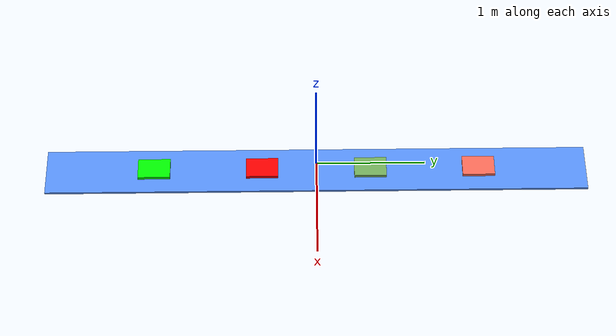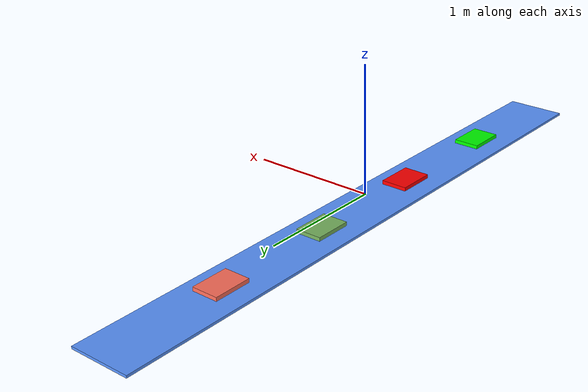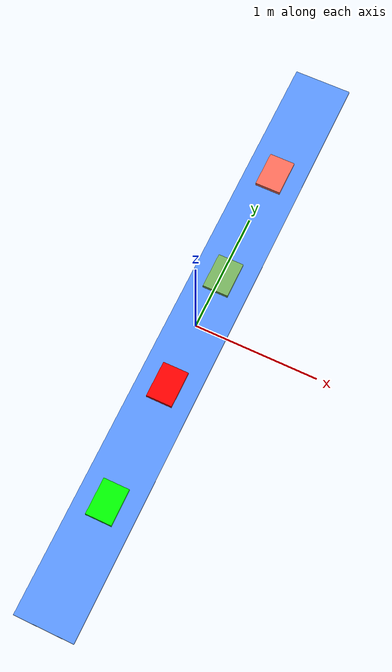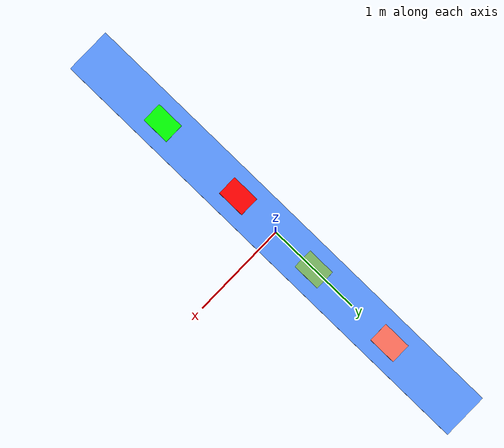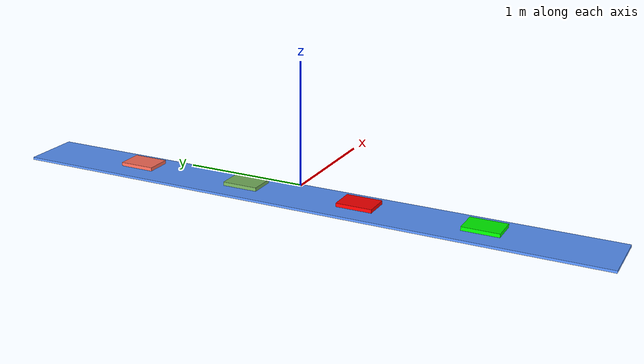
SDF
<sdf version="1.4">
 <world name="default">
  <light name="sun" type="directional">
   <pose>0 0 10 0 -0 0</pose>
   <diffuse>0.8 0.8 0.8 1</diffuse>
   <specular>0.2 0.2 0.2 1</specular>
   <attenuation>
    <range>1000</range>
    <constant>0.9</constant>
    <linear>0.01</linear>
    <quadratic>0.001</quadratic>
   </attenuation>
   <direction>-0.5 0.1 -0.9</direction>
  </light>
  <model name="ground_plane">
   <static>1</static>
   <link name="link">
    <collision name="collision">
     <geometry><plane><normal>0 0 1</normal><size>100 100</size></plane></geometry>
     <surface><friction><ode><mu>100</mu><mu2>50</mu2></ode></friction></surface>
    </collision>
    <visual name="visual">
     <cast_shadows>0</cast_shadows>
     <geometry><plane><normal>0 0 1</normal><size>100 100</size></plane></geometry>
     <material>
      <script><uri>file://media/materials/scripts/gazebo.material</uri><name>Gazebo/Grey</name></script>
     </material>
    </visual>
    <velocity_decay><linear>0</linear><angular>0</angular></velocity_decay>
   </link>
  </model>
  <model name="pista_com_sensores_1">
   <link name="link_0">
    <pose>-0 0 -0.104 -0 -0 -0</pose>
    <inertial>
     <mass>1</mass>
     <inertia>
      <ixx>0.166667</ixx>
      <ixy>0</ixy>
      <ixz>0</ixz>
      <iyy>0.166667</iyy>
      <iyz>0</iyz>
      <izz>0.166667</izz>
     </inertia>
    </inertial>
    <visual name="visual">
     <geometry><box><size>0.48 5 0.02</size></box></geometry>
     <material>
      <lighting>1</lighting>
      <script><uri>file://media/materials/scripts/gazebo.material</uri><name>Gazebo/Grey</name></script>
      <ambient>0.353 0.588 1 1</ambient>
      <diffuse>0.353 0.588 1 1</diffuse>
      <specular>0 0 1 1</specular>
      <emissive>0 0 0 1</emissive>
      <shader type="vertex"><normal_map>__default__</normal_map></shader>
     </material>
    </visual>
    <collision name="collision">
     <geometry><box><size>0.48 5 0.02</size></box></geometry>
     <surface>
      <friction>
       <ode><mu>1</mu><mu2>1</mu2><fdir1>0 0 0</fdir1><slip1>0</slip1><slip2>0</slip2></ode>
       <torsional>
        <coefficient>1</coefficient>
        <patch_radius>0</patch_radius>
        <surface_radius>0</surface_radius>
        <use_patch_radius>1</use_patch_radius>
        <ode><slip>0</slip></ode>
       </torsional>
      </friction>
      <bounce><restitution_coefficient>0</restitution_coefficient><threshold>1e+06</threshold></bounce>
      <contact>
       <collide_without_contact>0</collide_without_contact>
       <collide_without_contact_bitmask>1</collide_without_contact_bitmask>
       <collide_bitmask>1</collide_bitmask>
       <ode>
        <soft_cfm>0</soft_cfm>
        <soft_erp>0.2</soft_erp>
        <kp>1e+13</kp>
        <kd>1</kd>
        <max_vel>0.01</max_vel>
        <min_depth>0</min_depth>
       </ode>
       <bullet>
        <split_impulse>1</split_impulse>
        <split_impulse_penetration_threshold>-0.01</split_impulse_penetration_threshold>
        <soft_cfm>0</soft_cfm>
        <soft_erp>0.2</soft_erp>
        <kp>1e+13</kp>
        <kd>1</kd>
       </bullet>
      </contact>
     </surface>
    </collision>
   </link>
   <link name="link_1_clone">
    <pose>-0 -0.5 -0.064 -0 -0 -0</pose>
    <inertial>
     <mass>1</mass>
     <inertia>
      <ixx>0.166667</ixx>
      <ixy>0</ixy>
      <ixz>0</ixz>
      <iyy>0.166667</iyy>
      <iyz>0</iyz>
      <izz>0.166667</izz>
     </inertia>
    </inertial>
    <visual name="visual">
     <geometry><box><size>0.21 0.297 0.03</size></box></geometry>
     <material>
      <lighting>1</lighting>
      <script><uri>file://media/materials/scripts/gazebo.material</uri><name>Gazebo/Grey</name></script>
      <ambient>1 0 0 1</ambient>
      <diffuse>1 0 0 1</diffuse>
      <specular>1 0 0 1</specular>
      <emissive>1 0 0 1</emissive>
      <shader type="vertex"><normal_map>__default__</normal_map></shader>
     </material>
    </visual>
    <collision name="collision">
     <geometry><box><size>0.21 0.297 0.03</size></box></geometry>
     <surface>
      <friction>
       <ode><mu>1</mu><mu2>1</mu2><fdir1>0 0 0</fdir1><slip1>0</slip1><slip2>0</slip2></ode>
       <torsional>
        <coefficient>1</coefficient>
        <patch_radius>0</patch_radius>
        <surface_radius>0</surface_radius>
        <use_patch_radius>1</use_patch_radius>
        <ode><slip>0</slip></ode>
       </torsional>
      </friction>
      <bounce><restitution_coefficient>0</restitution_coefficient><threshold>1e+06</threshold></bounce>
      <contact>
       <collide_without_contact>0</collide_without_contact>
       <collide_without_contact_bitmask>1</collide_without_contact_bitmask>
       <collide_bitmask>1</collide_bitmask>
       <ode>
        <soft_cfm>0</soft_cfm>
        <soft_erp>0.2</soft_erp>
        <kp>1e+13</kp>
        <kd>1</kd>
        <max_vel>0.01</max_vel>
        <min_depth>0</min_depth>
       </ode>
       <bullet>
        <split_impulse>1</split_impulse>
        <split_impulse_penetration_threshold>-0.01</split_impulse_penetration_threshold>
        <soft_cfm>0</soft_cfm>
        <soft_erp>0.2</soft_erp>
        <kp>1e+13</kp>
        <kd>1</kd>
       </bullet>
      </contact>
     </surface>
    </collision>
   </link>
   <link name="link_1_clone_0">
    <pose>-0 -1.5 -0.064 -0 -0 -0</pose>
    <inertial>
     <mass>1</mass>
     <inertia>
      <ixx>0.166667</ixx>
      <ixy>0</ixy>
      <ixz>0</ixz>
      <iyy>0.166667</iyy>
      <iyz>0</iyz>
      <izz>0.166667</izz>
     </inertia>
    </inertial>
    <visual name="visual">
     <geometry><box><size>0.21 0.297 0.03</size></box></geometry>
     <material>
      <lighting>1</lighting>
      <script><uri>file://media/materials/scripts/gazebo.material</uri><name>Gazebo/Grey</name></script>
      <ambient>0 1 0 1</ambient>
      <diffuse>0 1 0 1</diffuse>
      <specular>0 1 0 1</specular>
      <emissive>0 1 0 1</emissive>
      <shader type="vertex"><normal_map>__default__</normal_map></shader>
     </material>
    </visual>
    <collision name="collision">
     <geometry><box><size>0.21 0.297 0.03</size></box></geometry>
     <surface>
      <friction>
       <ode><mu>1</mu><mu2>1</mu2><fdir1>0 0 0</fdir1><slip1>0</slip1><slip2>0</slip2></ode>
       <torsional>
        <coefficient>1</coefficient>
        <patch_radius>0</patch_radius>
        <surface_radius>0</surface_radius>
        <use_patch_radius>1</use_patch_radius>
        <ode><slip>0</slip></ode>
       </torsional>
      </friction>
      <bounce><restitution_coefficient>0</restitution_coefficient><threshold>1e+06</threshold></bounce>
      <contact>
       <collide_without_contact>0</collide_without_contact>
       <collide_without_contact_bitmask>1</collide_without_contact_bitmask>
       <collide_bitmask>1</collide_bitmask>
       <ode>
        <soft_cfm>0</soft_cfm>
        <soft_erp>0.2</soft_erp>
        <kp>1e+13</kp>
        <kd>1</kd>
        <max_vel>0.01</max_vel>
        <min_depth>0</min_depth>
       </ode>
       <bullet>
        <split_impulse>1</split_impulse>
        <split_impulse_penetration_threshold>-0.01</split_impulse_penetration_threshold>
        <soft_cfm>0</soft_cfm>
        <soft_erp>0.2</soft_erp>
        <kp>1e+13</kp>
        <kd>1</kd>
       </bullet>
      </contact>
     </surface>
    </collision>
   </link>
   <link name="link_1_clone_0_clone">
    <pose>-0 0.5 -0.064 -0 -0 -0</pose>
    <inertial>
     <mass>1</mass>
     <inertia>
      <ixx>0.166667</ixx>
      <ixy>0</ixy>
      <ixz>0</ixz>
      <iyy>0.166667</iyy>
      <iyz>0</iyz>
      <izz>0.166667</izz>
     </inertia>
    </inertial>
    <visual name="visual">
     <geometry><box><size>0.21 0.297 0.03</size></box></geometry>
     <material>
      <lighting>1</lighting>
      <script><uri>file://media/materials/scripts/gazebo.material</uri><name>Gazebo/Grey</name></script>
      <ambient>0.471 0.706 0.373 1</ambient>
      <diffuse>0.471 0.706 0.373 1</diffuse>
      <specular>0 1 0 1</specular>
      <emissive>0 1 0 1</emissive>
      <shader type="vertex"><normal_map>__default__</normal_map></shader>
     </material>
    </visual>
    <collision name="collision">
     <geometry><box><size>0.21 0.297 0.03</size></box></geometry>
     <surface>
      <friction>
       <ode><mu>1</mu><mu2>1</mu2><fdir1>0 0 0</fdir1><slip1>0</slip1><slip2>0</slip2></ode>
       <torsional>
        <coefficient>1</coefficient>
        <patch_radius>0</patch_radius>
        <surface_radius>0</surface_radius>
        <use_patch_radius>1</use_patch_radius>
        <ode><slip>0</slip></ode>
       </torsional>
      </friction>
      <bounce><restitution_coefficient>0</restitution_coefficient><threshold>1e+06</threshold></bounce>
      <contact>
       <collide_without_contact>0</collide_without_contact>
       <collide_without_contact_bitmask>1</collide_without_contact_bitmask>
       <collide_bitmask>1</collide_bitmask>
       <ode>
        <soft_cfm>0</soft_cfm>
        <soft_erp>0.2</soft_erp>
        <kp>1e+13</kp>
        <kd>1</kd>
        <max_vel>0.01</max_vel>
        <min_depth>0</min_depth>
       </ode>
       <bullet>
        <split_impulse>1</split_impulse>
        <split_impulse_penetration_threshold>-0.01</split_impulse_penetration_threshold>
        <soft_cfm>0</soft_cfm>
        <soft_erp>0.2</soft_erp>
        <kp>1e+13</kp>
        <kd>1</kd>
       </bullet>
      </contact>
     </surface>
    </collision>
   </link>
   <link name="link_1_clone_clone">
    <pose>0 1.5 -0.06 -0 -0 -0</pose>
    <inertial>
     <mass>1</mass>
     <inertia>
      <ixx>0.166667</ixx>
      <ixy>0</ixy>
      <ixz>0</ixz>
      <iyy>0.166667</iyy>
      <iyz>0</iyz>
      <izz>0.166667</izz>
     </inertia>
    </inertial>
    <visual name="visual">
     <geometry><box><size>0.21 0.297 0.03</size></box></geometry>
     <material>
      <lighting>1</lighting>
      <script><uri>file://media/materials/scripts/gazebo.material</uri><name>Gazebo/Grey</name></script>
      <ambient>1 0.431 0.353 1</ambient>
      <diffuse>1 0.431 0.353 1</diffuse>
      <specular>1 0 0 1</specular>
      <emissive>1 0 0 1</emissive>
      <shader type="vertex"><normal_map>__default__</normal_map></shader>
     </material>
    </visual>
    <collision name="collision">
     <geometry><box><size>0.21 0.297 0.03</size></box></geometry>
     <surface>
      <friction>
       <ode><mu>1</mu><mu2>1</mu2><fdir1>0 0 0</fdir1><slip1>0</slip1><slip2>0</slip2></ode>
       <torsional>
        <coefficient>1</coefficient>
        <patch_radius>0</patch_radius>
        <surface_radius>0</surface_radius>
        <use_patch_radius>1</use_patch_radius>
        <ode><slip>0</slip></ode>
       </torsional>
      </friction>
      <bounce><restitution_coefficient>0</restitution_coefficient><threshold>1e+06</threshold></bounce>
      <contact>
       <collide_without_contact>0</collide_without_contact>
       <collide_without_contact_bitmask>1</collide_without_contact_bitmask>
       <collide_bitmask>1</collide_bitmask>
       <ode>
        <soft_cfm>0</soft_cfm>
        <soft_erp>0.2</soft_erp>
        <kp>1e+13</kp>
        <kd>1</kd>
        <max_vel>0.01</max_vel>
        <min_depth>0</min_depth>
       </ode>
       <bullet>
        <split_impulse>1</split_impulse>
        <split_impulse_penetration_threshold>-0.01</split_impulse_penetration_threshold>
        <soft_cfm>0</soft_cfm>
        <soft_erp>0.2</soft_erp>
        <kp>1e+13</kp>
        <kd>1</kd>
       </bullet>
      </contact>
     </surface>
    </collision>
   </link>
   <joint name="link_0_JOINT_1" type="revolute">
    <parent>link_0</parent>
    <child>link_1_clone_0_clone</child>
    <axis>
     <xyz>1 0 0</xyz>
     <use_parent_model_frame>0</use_parent_model_frame>
     <limit>
      <lower>-1.79769e+308</lower>
      <upper>1.79769e+308</upper>
      <effort>-1</effort>
      <velocity>-1</velocity>
     </limit>
     <dynamics>
      <spring_reference>0</spring_reference>
      <spring_stiffness>0</spring_stiffness>
      <damping>0</damping>
      <friction>0</friction>
     </dynamics>
    </axis>
    <physics>
     <ode><limit><cfm>0</cfm><erp>0.2</erp></limit><suspension><cfm>0</cfm><erp>0.2</erp></suspension></ode>
    </physics>
   </joint>
   <joint name="link_0_JOINT_2" type="revolute">
    <parent>link_0</parent>
    <child>link_1_clone</child>
    <axis>
     <xyz>1 0 0</xyz>
     <use_parent_model_frame>0</use_parent_model_frame>
     <limit>
      <lower>-1.79769e+308</lower>
      <upper>1.79769e+308</upper>
      <effort>-1</effort>
      <velocity>-1</velocity>
     </limit>
     <dynamics>
      <spring_reference>0</spring_reference>
      <spring_stiffness>0</spring_stiffness>
      <damping>0</damping>
      <friction>0</friction>
     </dynamics>
    </axis>
    <physics>
     <ode><limit><cfm>0</cfm><erp>0.2</erp></limit><suspension><cfm>0</cfm><erp>0.2</erp></suspension></ode>
    </physics>
   </joint>
   <joint name="link_0_JOINT_4" type="fixed">
    <parent>link_0</parent>
    <child>link_1_clone_0</child>
    <physics>
     <ode><limit><cfm>0</cfm><erp>0.2</erp></limit><suspension><cfm>0</cfm><erp>0.2</erp></suspension></ode>
    </physics>
   </joint>
   <joint name="link_0_JOINT_5" type="revolute">
    <parent>link_0</parent>
    <child>link_1_clone_clone</child>
    <axis>
     <xyz>1 0 0</xyz>
     <use_parent_model_frame>0</use_parent_model_frame>
     <limit>
      <lower>-1.79769e+308</lower>
      <upper>1.79769e+308</upper>
      <effort>-1</effort>
      <velocity>-1</velocity>
     </limit>
     <dynamics>
      <spring_reference>0</spring_reference>
      <spring_stiffness>0</spring_stiffness>
      <damping>0</damping>
      <friction>0</friction>
     </dynamics>
    </axis>
    <physics>
     <ode><limit><cfm>0</cfm><erp>0.2</erp></limit><suspension><cfm>0</cfm><erp>0.2</erp></suspension></ode>
    </physics>
   </joint>
   <static>0</static>
  </model>
  <physics type="ode">
   <max_step_size>0.001</max_step_size>
   <real_time_factor>1</real_time_factor>
   <real_time_update_rate>1000</real_time_update_rate>
   <gravity>0 0 -9.8</gravity>
  </physics>
  <scene><ambient>0.4 0.4 0.4 1</ambient><background>0.7 0.7 0.7 1</background><shadows>1</shadows></scene>
 </world>
</sdf>
